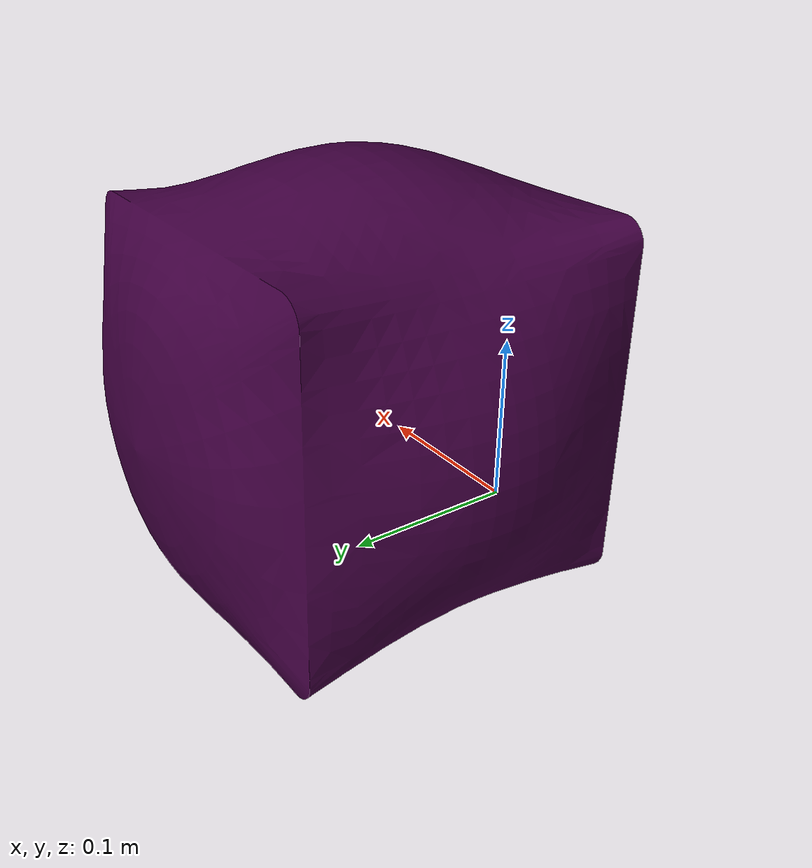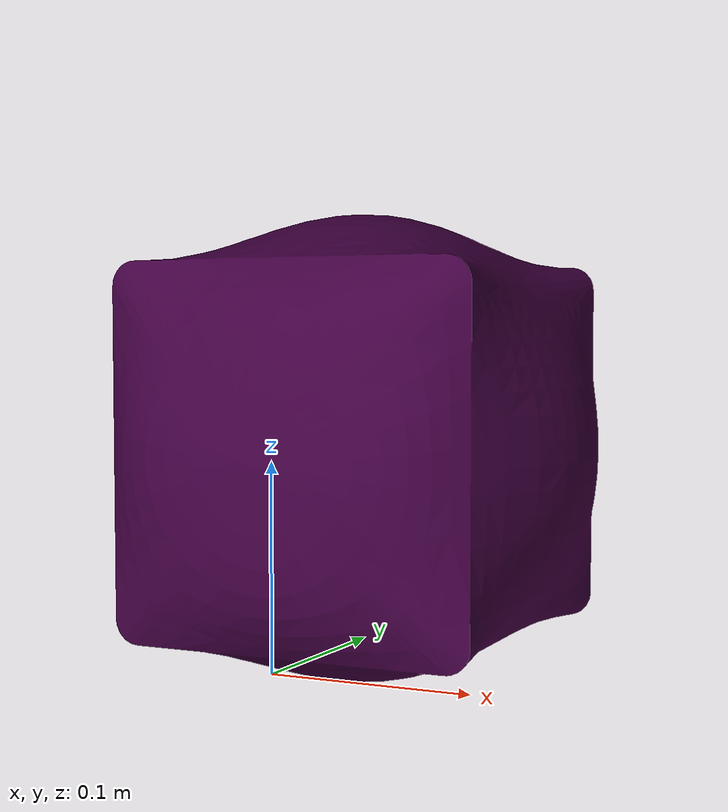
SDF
<?xml version="1.0" encoding="utf-8"?>
<sdf version="1.5">
  <model name="PurpleCube2">
    <pose>0 0 0.1 0 0 0</pose>

    <link name="Body">
      <gravity>1</gravity>
      <self_collide>0</self_collide>
      <pose>0 0.1 0 0 0 0</pose>
      <must_be_base_link>1</must_be_base_link>
      <velocity_decay>
        <linear>0.01</linear>
        <angular>0.01</angular>
      </velocity_decay>
      <inertial>
        <mass>0.2</mass>
        <pose>0 0 0 0 0 0</pose>

      </inertial>
      <collision name="Body_collision">
        <pose>0 0 0 0 0 0</pose>
        <geometry>
          <box>
            <size>0.2 0.2 0.2</size>
          </box>
        </geometry>
        <surface>
          <contact>
             <ode>
              <kp>1e1</kp>
              <kd>1e7</kd>
            </ode>
          </contact>
          <friction>

            <torsional>
              <coefficient>1.0</coefficient>
              <use_patch_radius>1</use_patch_radius>
              <patch_radius>0.1</patch_radius>
              <ode>
                <slip>1</slip>
              </ode>
            </torsional>

            <ode>
              <mu>1</mu>
              <mu2>1</mu2>
            </ode>

          </friction>
        </surface>
      </collision>
      <visual name="Body_visual">
        <pose>0 0 0 0 0 0</pose>
        <material>
          <ambient>0.250980392156863 0 0.250980392156863 1</ambient>
          <diffuse>0.250980392156863 0 0.250980392156863 1</diffuse>
        </material>
        <geometry>
          <mesh>
            <scale>1 1 1</scale>
            <uri>model://PurpleCube/meshes/Body.STL</uri>
          </mesh>
        </geometry>
      </visual>
    </link>
  </model>
</sdf>
